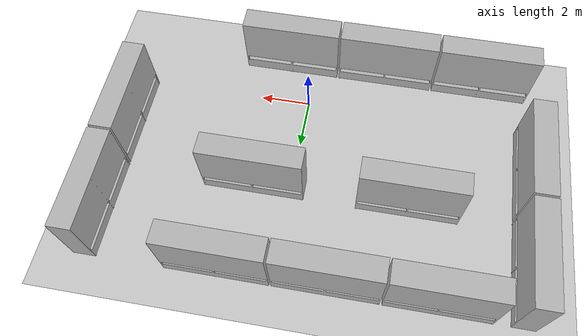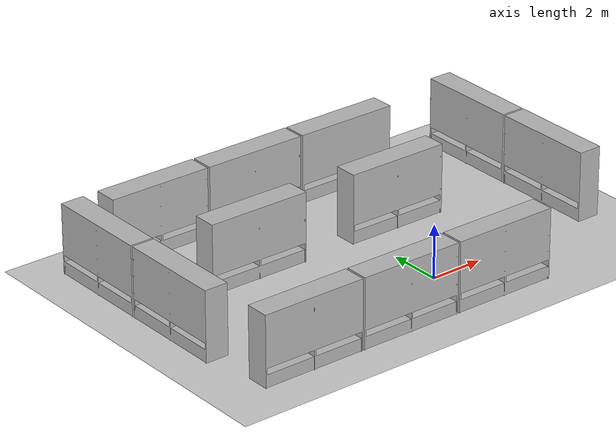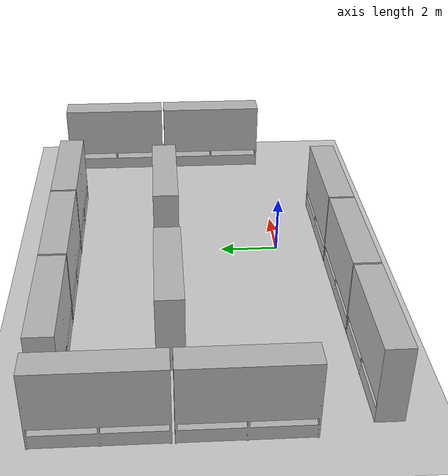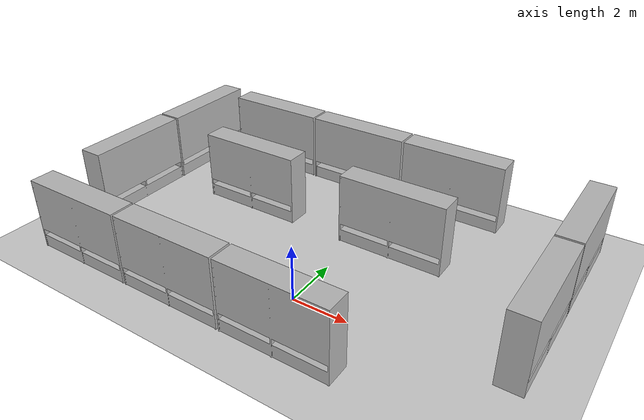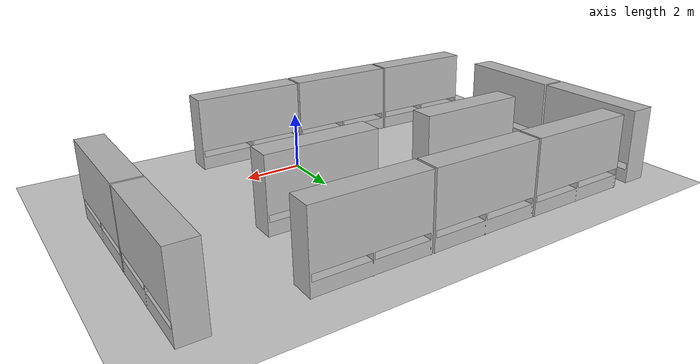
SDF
<sdf version="1.6">
 <world name="default">
  <light name="sun" type="directional">
   <pose>0 0 10 0 -0 0</pose>
   <diffuse>0.8 0.8 0.8 1</diffuse>
   <specular>0.2 0.2 0.2 1</specular>
   <attenuation>
    <range>1000</range>
    <constant>0.9</constant>
    <linear>0.01</linear>
    <quadratic>0.001</quadratic>
   </attenuation>
   <direction>-0.5 0.1 -0.9</direction>
  </light>
  <model name="ground_plane">
   <static>1</static>
   <link name="link">
    <collision name="collision">
     <geometry><plane><normal>0 0 1</normal><size>100 100</size></plane></geometry>
     <surface>
      <contact><collide_bitmask>65535</collide_bitmask></contact>
      <friction><ode><mu>1000</mu><mu2>1000</mu2></ode></friction>
     </surface>
    </collision>
    <visual name="visual">
     <cast_shadows>0</cast_shadows>
     <geometry><plane><normal>0 0 1</normal><size>100 100</size></plane></geometry>
     <material>
      <script><uri>file://media/materials/scripts/gazebo.material</uri><name>Gazebo/Grey</name></script>
     </material>
    </visual>
   </link>
  </model>
  <gravity>0 0 -9.8</gravity>
  <magnetic_field>6e-06 2.3e-05 -4.2e-05</magnetic_field>
  <atmosphere type="adiabatic"/>
  <physics name="default_physics" default="0" type="ode">
   <max_step_size>0.001</max_step_size>
   <real_time_factor>1</real_time_factor>
   <real_time_update_rate>1000</real_time_update_rate>
  </physics>
  <scene><ambient>0.4 0.4 0.4 1</ambient><background>0.7 0.7 0.7 1</background><shadows>1</shadows></scene>
  <audio><device>default</device></audio>
  <spherical_coordinates>
   <surface_model>EARTH_WGS84</surface_model>
   <latitude_deg>0</latitude_deg>
   <longitude_deg>0</longitude_deg>
   <elevation>0</elevation>
   <heading_deg>0</heading_deg>
  </spherical_coordinates>
  <model name="aws_robomaker_warehouse_ShelfD_01">
   <link name="link">
    <inertial>
     <mass>30</mass>
     <inertia><ixx>907.144</ixx><ixy>0</ixy><ixz>0</ixz><iyy>104.95</iyy><iyz>0</iyz><izz>824.248</izz></inertia>
    </inertial>
    <collision name="collision">
     <geometry>
      <mesh>
       <uri>model://aws_robomaker_warehouse_ShelfD_01/meshes/aws_robomaker_warehouse_ShelfD_01_collision.DAE</uri>
       <scale>1 1 1</scale>
      </mesh>
     </geometry>
     <surface>
      <friction><ode><mu>0.2</mu><mu2>0.2</mu2><fdir1>0 0 0</fdir1><slip1>0</slip1><slip2>0</slip2></ode></friction>
     </surface>
    </collision>
    <visual name="visual">
     <geometry>
      <mesh>
       <uri>model://aws_robomaker_warehouse_ShelfD_01/meshes/aws_robomaker_warehouse_ShelfD_01_visual.DAE</uri>
      </mesh>
     </geometry>
     <meta><layer>1</layer></meta>
    </visual>
   </link>
   <static>1</static>
   <pose>1 -2 0 0 -0 0</pose>
  </model>
  <model name="aws_robomaker_warehouse_ShelfD_01_clone">
   <link name="link">
    <inertial>
     <mass>30</mass>
     <inertia><ixx>907.144</ixx><ixy>0</ixy><ixz>0</ixz><iyy>104.95</iyy><iyz>0</iyz><izz>824.248</izz></inertia>
    </inertial>
    <collision name="collision">
     <geometry>
      <mesh>
       <uri>model://aws_robomaker_warehouse_ShelfD_01/meshes/aws_robomaker_warehouse_ShelfD_01_collision.DAE</uri>
       <scale>1 1 1</scale>
      </mesh>
     </geometry>
     <surface>
      <friction><ode><mu>0.2</mu><mu2>0.2</mu2><fdir1>0 0 0</fdir1><slip1>0</slip1><slip2>0</slip2></ode></friction>
     </surface>
    </collision>
    <visual name="visual">
     <geometry>
      <mesh>
       <uri>model://aws_robomaker_warehouse_ShelfD_01/meshes/aws_robomaker_warehouse_ShelfD_01_visual.DAE</uri>
      </mesh>
     </geometry>
     <meta><layer>1</layer></meta>
    </visual>
   </link>
   <static>1</static>
   <pose>-3 -2 0 0 -0 0</pose>
  </model>
  <model name="aws_robomaker_warehouse_ShelfD_01_clone_clone">
   <link name="link">
    <inertial>
     <mass>30</mass>
     <inertia><ixx>907.144</ixx><ixy>0</ixy><ixz>0</ixz><iyy>104.95</iyy><iyz>0</iyz><izz>824.248</izz></inertia>
    </inertial>
    <collision name="collision">
     <geometry>
      <mesh>
       <uri>model://aws_robomaker_warehouse_ShelfD_01/meshes/aws_robomaker_warehouse_ShelfD_01_collision.DAE</uri>
       <scale>1 1 1</scale>
      </mesh>
     </geometry>
     <surface>
      <friction><ode><mu>0.2</mu><mu2>0.2</mu2><fdir1>0 0 0</fdir1><slip1>0</slip1><slip2>0</slip2></ode></friction>
     </surface>
    </collision>
    <visual name="visual">
     <geometry>
      <mesh>
       <uri>model://aws_robomaker_warehouse_ShelfD_01/meshes/aws_robomaker_warehouse_ShelfD_01_visual.DAE</uri>
      </mesh>
     </geometry>
     <meta><layer>1</layer></meta>
    </visual>
   </link>
   <static>1</static>
   <pose>-7 -2 0 0 -0 0</pose>
  </model>
  <model name="aws_robomaker_warehouse_ShelfD_01_clone_clone_clone">
   <link name="link">
    <inertial>
     <mass>30</mass>
     <inertia><ixx>907.144</ixx><ixy>0</ixy><ixz>0</ixz><iyy>104.95</iyy><iyz>0</iyz><izz>824.248</izz></inertia>
    </inertial>
    <collision name="collision">
     <geometry>
      <mesh>
       <uri>model://aws_robomaker_warehouse_ShelfD_01/meshes/aws_robomaker_warehouse_ShelfD_01_collision.DAE</uri>
       <scale>1 1 1</scale>
      </mesh>
     </geometry>
     <surface>
      <friction><ode><mu>0.2</mu><mu2>0.2</mu2><fdir1>0 0 0</fdir1><slip1>0</slip1><slip2>0</slip2></ode></friction>
     </surface>
    </collision>
    <visual name="visual">
     <geometry>
      <mesh>
       <uri>model://aws_robomaker_warehouse_ShelfD_01/meshes/aws_robomaker_warehouse_ShelfD_01_visual.DAE</uri>
      </mesh>
     </geometry>
     <meta><layer>1</layer></meta>
    </visual>
   </link>
   <static>1</static>
   <pose>-9 2 0 0 0 -1.5708</pose>
  </model>
  <model name="aws_robomaker_warehouse_ShelfD_01_clone_clone_clone_clone">
   <link name="link">
    <inertial>
     <mass>30</mass>
     <inertia><ixx>907.144</ixx><ixy>0</ixy><ixz>0</ixz><iyy>104.95</iyy><iyz>0</iyz><izz>824.248</izz></inertia>
    </inertial>
    <collision name="collision">
     <geometry>
      <mesh>
       <uri>model://aws_robomaker_warehouse_ShelfD_01/meshes/aws_robomaker_warehouse_ShelfD_01_collision.DAE</uri>
       <scale>1 1 1</scale>
      </mesh>
     </geometry>
     <surface>
      <friction><ode><mu>0.2</mu><mu2>0.2</mu2><fdir1>0 0 0</fdir1><slip1>0</slip1><slip2>0</slip2></ode></friction>
     </surface>
    </collision>
    <visual name="visual">
     <geometry>
      <mesh>
       <uri>model://aws_robomaker_warehouse_ShelfD_01/meshes/aws_robomaker_warehouse_ShelfD_01_visual.DAE</uri>
      </mesh>
     </geometry>
     <meta><layer>1</layer></meta>
    </visual>
   </link>
   <static>1</static>
   <pose>-9 6 0 0 0 -1.5708</pose>
  </model>
  <model name="aws_robomaker_warehouse_ShelfD_01_clone_clone_clone_1">
   <link name="link">
    <inertial>
     <mass>30</mass>
     <inertia><ixx>907.144</ixx><ixy>0</ixy><ixz>0</ixz><iyy>104.95</iyy><iyz>0</iyz><izz>824.248</izz></inertia>
    </inertial>
    <collision name="collision">
     <geometry>
      <mesh>
       <uri>model://aws_robomaker_warehouse_ShelfD_01/meshes/aws_robomaker_warehouse_ShelfD_01_collision.DAE</uri>
       <scale>1 1 1</scale>
      </mesh>
     </geometry>
     <surface>
      <friction><ode><mu>0.2</mu><mu2>0.2</mu2><fdir1>0 0 0</fdir1><slip1>0</slip1><slip2>0</slip2></ode></friction>
     </surface>
    </collision>
    <visual name="visual">
     <geometry>
      <mesh>
       <uri>model://aws_robomaker_warehouse_ShelfD_01/meshes/aws_robomaker_warehouse_ShelfD_01_visual.DAE</uri>
      </mesh>
     </geometry>
     <meta><layer>1</layer></meta>
    </visual>
   </link>
   <static>1</static>
   <pose>-4.55218 4 0 0 -0 0</pose>
  </model>
  <model name="aws_robomaker_warehouse_ShelfD_01_clone_clone_clone_1_clone">
   <link name="link">
    <inertial>
     <mass>30</mass>
     <inertia><ixx>907.144</ixx><ixy>0</ixy><ixz>0</ixz><iyy>104.95</iyy><iyz>0</iyz><izz>824.248</izz></inertia>
    </inertial>
    <collision name="collision">
     <geometry>
      <mesh>
       <uri>model://aws_robomaker_warehouse_ShelfD_01/meshes/aws_robomaker_warehouse_ShelfD_01_collision.DAE</uri>
       <scale>1 1 1</scale>
      </mesh>
     </geometry>
     <surface>
      <friction><ode><mu>0.2</mu><mu2>0.2</mu2><fdir1>0 0 0</fdir1><slip1>0</slip1><slip2>0</slip2></ode></friction>
     </surface>
    </collision>
    <visual name="visual">
     <geometry>
      <mesh>
       <uri>model://aws_robomaker_warehouse_ShelfD_01/meshes/aws_robomaker_warehouse_ShelfD_01_visual.DAE</uri>
      </mesh>
     </geometry>
     <meta><layer>1</layer></meta>
    </visual>
   </link>
   <static>1</static>
   <pose>1.40268 4 0 0 -0 0</pose>
  </model>
  <model name="aws_robomaker_warehouse_ShelfD_01_clone_0">
   <link name="link">
    <inertial>
     <mass>30</mass>
     <inertia><ixx>907.144</ixx><ixy>0</ixy><ixz>0</ixz><iyy>104.95</iyy><iyz>0</iyz><izz>824.248</izz></inertia>
    </inertial>
    <collision name="collision">
     <geometry>
      <mesh>
       <uri>model://aws_robomaker_warehouse_ShelfD_01/meshes/aws_robomaker_warehouse_ShelfD_01_collision.DAE</uri>
       <scale>1 1 1</scale>
      </mesh>
     </geometry>
     <surface>
      <friction><ode><mu>0.2</mu><mu2>0.2</mu2><fdir1>0 0 0</fdir1><slip1>0</slip1><slip2>0</slip2></ode></friction>
     </surface>
    </collision>
    <visual name="visual">
     <geometry>
      <mesh>
       <uri>model://aws_robomaker_warehouse_ShelfD_01/meshes/aws_robomaker_warehouse_ShelfD_01_visual.DAE</uri>
      </mesh>
     </geometry>
     <meta><layer>1</layer></meta>
    </visual>
   </link>
   <static>1</static>
   <pose>-6 7.53438 0 0 -0 0</pose>
  </model>
  <model name="aws_robomaker_warehouse_ShelfD_01_clone_1">
   <link name="link">
    <inertial>
     <mass>30</mass>
     <inertia><ixx>907.144</ixx><ixy>0</ixy><ixz>0</ixz><iyy>104.95</iyy><iyz>0</iyz><izz>824.248</izz></inertia>
    </inertial>
    <collision name="collision">
     <geometry>
      <mesh>
       <uri>model://aws_robomaker_warehouse_ShelfD_01/meshes/aws_robomaker_warehouse_ShelfD_01_collision.DAE</uri>
       <scale>1 1 1</scale>
      </mesh>
     </geometry>
     <surface>
      <friction><ode><mu>0.2</mu><mu2>0.2</mu2><fdir1>0 0 0</fdir1><slip1>0</slip1><slip2>0</slip2></ode></friction>
     </surface>
    </collision>
    <visual name="visual">
     <geometry>
      <mesh>
       <uri>model://aws_robomaker_warehouse_ShelfD_01/meshes/aws_robomaker_warehouse_ShelfD_01_visual.DAE</uri>
      </mesh>
     </geometry>
     <meta><layer>1</layer></meta>
    </visual>
   </link>
   <static>1</static>
   <pose>-2 7.52872 0 0 -0 0</pose>
  </model>
  <model name="aws_robomaker_warehouse_ShelfD_01_clone_2">
   <link name="link">
    <inertial>
     <mass>30</mass>
     <inertia><ixx>907.144</ixx><ixy>0</ixy><ixz>0</ixz><iyy>104.95</iyy><iyz>0</iyz><izz>824.248</izz></inertia>
    </inertial>
    <collision name="collision">
     <geometry>
      <mesh>
       <uri>model://aws_robomaker_warehouse_ShelfD_01/meshes/aws_robomaker_warehouse_ShelfD_01_collision.DAE</uri>
       <scale>1 1 1</scale>
      </mesh>
     </geometry>
     <surface>
      <friction><ode><mu>0.2</mu><mu2>0.2</mu2><fdir1>0 0 0</fdir1><slip1>0</slip1><slip2>0</slip2></ode></friction>
     </surface>
    </collision>
    <visual name="visual">
     <geometry>
      <mesh>
       <uri>model://aws_robomaker_warehouse_ShelfD_01/meshes/aws_robomaker_warehouse_ShelfD_01_visual.DAE</uri>
      </mesh>
     </geometry>
     <meta><layer>1</layer></meta>
    </visual>
   </link>
   <static>1</static>
   <pose>2 7.52771 0 0 -0 0</pose>
  </model>
  <model name="aws_robomaker_warehouse_ShelfD_01_clone_clone_clone_clone_clone">
   <link name="link">
    <inertial>
     <mass>30</mass>
     <inertia><ixx>907.144</ixx><ixy>0</ixy><ixz>0</ixz><iyy>104.95</iyy><iyz>0</iyz><izz>824.248</izz></inertia>
    </inertial>
    <collision name="collision">
     <geometry>
      <mesh>
       <uri>model://aws_robomaker_warehouse_ShelfD_01/meshes/aws_robomaker_warehouse_ShelfD_01_collision.DAE</uri>
       <scale>1 1 1</scale>
      </mesh>
     </geometry>
     <surface>
      <friction><ode><mu>0.2</mu><mu2>0.2</mu2><fdir1>0 0 0</fdir1><slip1>0</slip1><slip2>0</slip2></ode></friction>
     </surface>
    </collision>
    <visual name="visual">
     <geometry>
      <mesh>
       <uri>model://aws_robomaker_warehouse_ShelfD_01/meshes/aws_robomaker_warehouse_ShelfD_01_visual.DAE</uri>
      </mesh>
     </geometry>
     <meta><layer>1</layer></meta>
    </visual>
   </link>
   <static>1</static>
   <pose>7 6 0 0 0 -1.5708</pose>
  </model>
  <model name="aws_robomaker_warehouse_ShelfD_01_clone_clone_clone_clone_clone_0">
   <link name="link">
    <inertial>
     <mass>30</mass>
     <inertia><ixx>907.144</ixx><ixy>0</ixy><ixz>0</ixz><iyy>104.95</iyy><iyz>0</iyz><izz>824.248</izz></inertia>
    </inertial>
    <collision name="collision">
     <geometry>
      <mesh>
       <uri>model://aws_robomaker_warehouse_ShelfD_01/meshes/aws_robomaker_warehouse_ShelfD_01_collision.DAE</uri>
       <scale>1 1 1</scale>
      </mesh>
     </geometry>
     <surface>
      <friction><ode><mu>0.2</mu><mu2>0.2</mu2><fdir1>0 0 0</fdir1><slip1>0</slip1><slip2>0</slip2></ode></friction>
     </surface>
    </collision>
    <visual name="visual">
     <geometry>
      <mesh>
       <uri>model://aws_robomaker_warehouse_ShelfD_01/meshes/aws_robomaker_warehouse_ShelfD_01_visual.DAE</uri>
      </mesh>
     </geometry>
     <meta><layer>1</layer></meta>
    </visual>
   </link>
   <static>1</static>
   <pose>7 2 0 0 0 -1.5708</pose>
  </model>
  <plugin name="ActorPosesPlugin" filename="libActorPosesPlugin.so"/>
 </world>
</sdf>
